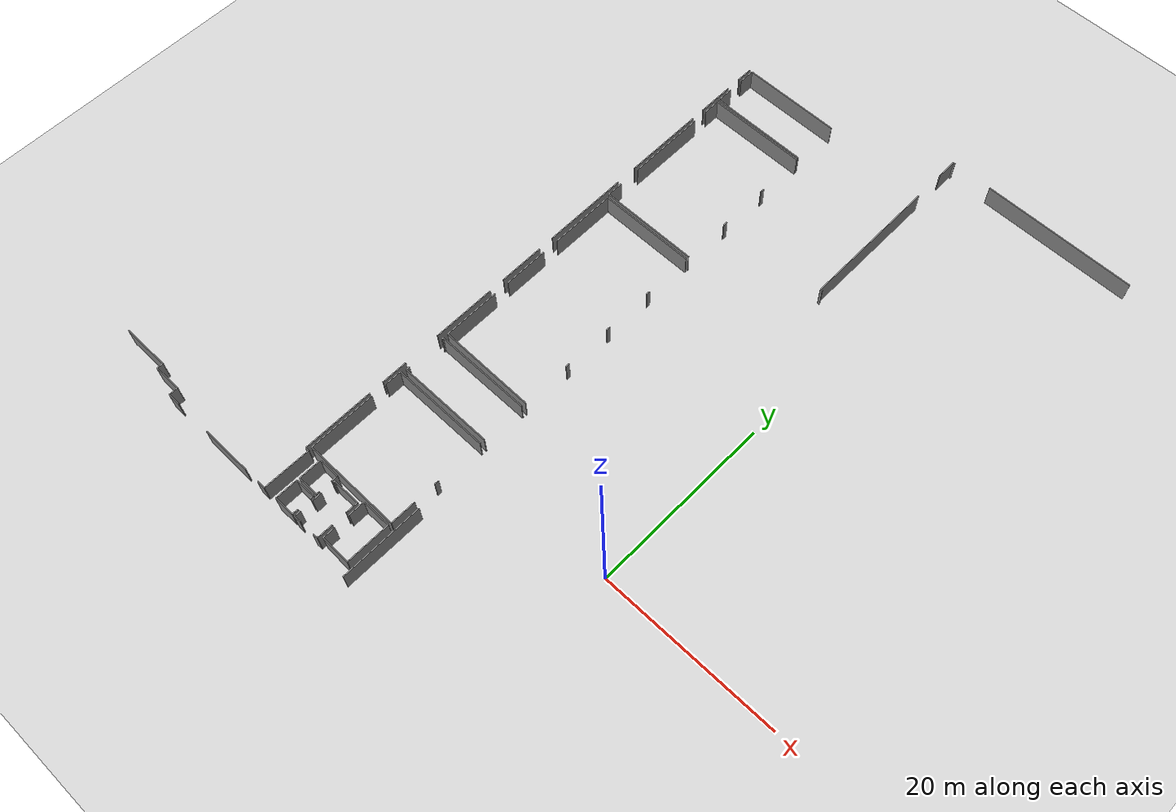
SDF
<sdf version="1.6">
 <world name="default">
  <model name="ground_plane">
   <static>1</static>
   <link name="link">
    <collision name="collision">
     <geometry><plane><normal>0 0 1</normal><size>100 100</size></plane></geometry>
     <surface><friction><ode><mu>100</mu><mu2>50</mu2></ode></friction></surface>
    </collision>
    <visual name="visual">
     <cast_shadows>0</cast_shadows>
     <geometry><plane><normal>0 0 1</normal><size>100 100</size></plane></geometry>
     <material>
      <script><uri>file://media/materials/scripts/gazebo.material</uri><name>Gazebo/Grey</name></script>
     </material>
    </visual>
   </link>
  </model>
  <model name="0510045904_A_40_1_102">
   <static>1</static>
   <link name="Wall_60">
    <collision name="Wall_60_Collision">
     <geometry><box><size>0.949382355555 0.1 2.5</size></box></geometry>
     <pose>0.474691177777 0 1.25 0 0 0</pose>
    </collision>
    <visual name="Wall_60_Visual">
     <pose>0.474691177777 0 1.25 0 0 0</pose>
     <geometry><box><size>0.949382355555 0.1 2.5</size></box></geometry>
     <material>
      <script><uri>file://media/materials/scripts/gazebo.material</uri><name>Gazebo/Grey</name></script>
      <ambient>1 1 1 1</ambient>
     </material>
    </visual>
    <pose>56.5137684563 -78.1370370841 0 0 0 3.14159265359</pose>
   </link>
   <link name="Wall_61">
    <collision name="Wall_61_Collision">
     <geometry><box><size>5.6762349715 0.1 2.5</size></box></geometry>
     <pose>2.83811748575 0 1.25 0 0 0</pose>
    </collision>
    <visual name="Wall_61_Visual">
     <pose>2.83811748575 0 1.25 0 0 0</pose>
     <geometry><box><size>5.6762349715 0.1 2.5</size></box></geometry>
     <material>
      <script><uri>file://media/materials/scripts/gazebo.material</uri><name>Gazebo/Grey</name></script>
      <ambient>1 1 1 1</ambient>
     </material>
    </visual>
    <pose>53.8753538919 -78.1370370841 0 0 0 3.14159265359</pose>
   </link>
   <link name="Wall_62">
    <collision name="Wall_62_Collision">
     <geometry><box><size>1.40160219381 0.1 2.5</size></box></geometry>
     <pose>0.700801096906 0 1.25 0 0 0</pose>
    </collision>
    <visual name="Wall_62_Visual">
     <pose>0.700801096906 0 1.25 0 0 0</pose>
     <geometry><box><size>1.40160219381 0.1 2.5</size></box></geometry>
     <material>
      <script><uri>file://media/materials/scripts/gazebo.material</uri><name>Gazebo/Grey</name></script>
      <ambient>1 1 1 1</ambient>
     </material>
    </visual>
    <pose>44.0293523938 -78.1370370841 0 0 0 3.14159265359</pose>
   </link>
   <link name="Wall_63">
    <collision name="Wall_63_Collision">
     <geometry><box><size>0.955222364696 0.1 2.5</size></box></geometry>
     <pose>0.477611182348 0 1.25 0 0 0</pose>
    </collision>
    <visual name="Wall_63_Visual">
     <pose>0.477611182348 0 1.25 0 0 0</pose>
     <geometry><box><size>0.955222364696 0.1 2.5</size></box></geometry>
     <material>
      <script><uri>file://media/materials/scripts/gazebo.material</uri><name>Gazebo/Grey</name></script>
      <ambient>1 1 1 1</ambient>
     </material>
    </visual>
    <pose>42.6277502 -78.1370370841 0 0 0 1.57079632679</pose>
   </link>
   <link name="Wall_64">
    <collision name="Wall_64_Collision">
     <geometry><box><size>3.09114222961 0.1 2.5</size></box></geometry>
     <pose>1.54557111481 0 1.25 0 0 0</pose>
    </collision>
    <visual name="Wall_64_Visual">
     <pose>1.54557111481 0 1.25 0 0 0</pose>
     <geometry><box><size>3.09114222961 0.1 2.5</size></box></geometry>
     <material>
      <script><uri>file://media/materials/scripts/gazebo.material</uri><name>Gazebo/Grey</name></script>
      <ambient>1 1 1 1</ambient>
     </material>
    </visual>
    <pose>42.6277502 -77.1818147194 0 0 0 3.14159265359</pose>
   </link>
   <link name="Wall_65">
    <collision name="Wall_65_Collision">
     <geometry><box><size>0.671854964643 0.1 2.5</size></box></geometry>
     <pose>0.335927482321 0 1.25 0 0 0</pose>
    </collision>
    <visual name="Wall_65_Visual">
     <pose>0.335927482321 0 1.25 0 0 0</pose>
     <geometry><box><size>0.671854964643 0.1 2.5</size></box></geometry>
     <material>
      <script><uri>file://media/materials/scripts/gazebo.material</uri><name>Gazebo/Grey</name></script>
      <ambient>1 1 1 1</ambient>
     </material>
    </visual>
    <pose>39.5366079703 -77.1818147194 0 0 0 1.57079632679</pose>
   </link>
   <link name="Wall_66">
    <collision name="Wall_66_Collision">
     <geometry><box><size>5.31821701982 0.1 2.5</size></box></geometry>
     <pose>2.65910850991 0 1.25 0 0 0</pose>
    </collision>
    <visual name="Wall_66_Visual">
     <pose>2.65910850991 0 1.25 0 0 0</pose>
     <geometry><box><size>5.31821701982 0.1 2.5</size></box></geometry>
     <material>
      <script><uri>file://media/materials/scripts/gazebo.material</uri><name>Gazebo/Grey</name></script>
      <ambient>1 1 1 1</ambient>
     </material>
    </visual>
    <pose>39.5366079703 -76.5099597547 0 0 0 3.14159265359</pose>
   </link>
   <link name="Wall_70">
    <collision name="Wall_70_Collision">
     <geometry><box><size>1.76622189496 0.1 2.5</size></box></geometry>
     <pose>0.883110947478 0 1.25 0 0 0</pose>
    </collision>
    <visual name="Wall_70_Visual">
     <pose>0.883110947478 0 1.25 0 0 0</pose>
     <geometry><box><size>1.76622189496 0.1 2.5</size></box></geometry>
     <material>
      <script><uri>file://media/materials/scripts/gazebo.material</uri><name>Gazebo/Grey</name></script>
      <ambient>1 1 1 1</ambient>
     </material>
    </visual>
    <pose>56.1443243998 -11.2316071451 0 0 0 -1.57079632679</pose>
   </link>
   <link name="Wall_71">
    <collision name="Wall_71_Collision">
     <geometry><box><size>3.98644102226 0.1 2.5</size></box></geometry>
     <pose>1.99322051113 0 1.25 0 0 0</pose>
    </collision>
    <visual name="Wall_71_Visual">
     <pose>1.99322051113 0 1.25 0 0 0</pose>
     <geometry><box><size>3.98644102226 0.1 2.5</size></box></geometry>
     <material>
      <script><uri>file://media/materials/scripts/gazebo.material</uri><name>Gazebo/Grey</name></script>
      <ambient>1 1 1 1</ambient>
     </material>
    </visual>
    <pose>56.1443243998 -14.699556921 0 0 0 -1.57079632679</pose>
   </link>
   <link name="Wall_72">
    <collision name="Wall_72_Collision">
     <geometry><box><size>8.83161730166 0.1 2.5</size></box></geometry>
     <pose>4.41580865083 0 1.25 0 0 0</pose>
    </collision>
    <visual name="Wall_72_Visual">
     <pose>4.41580865083 0 1.25 0 0 0</pose>
     <geometry><box><size>8.83161730166 0.1 2.5</size></box></geometry>
     <material>
      <script><uri>file://media/materials/scripts/gazebo.material</uri><name>Gazebo/Grey</name></script>
      <ambient>1 1 1 1</ambient>
     </material>
    </visual>
    <pose>56.1443243998 -20.2554369216 0 0 0 -1.57079632679</pose>
   </link>
   <link name="Wall_73">
    <collision name="Wall_73_Collision">
     <geometry><box><size>9.51794533244 0.1 2.5</size></box></geometry>
     <pose>4.75897266622 0 1.25 0 0 0</pose>
    </collision>
    <visual name="Wall_73_Visual">
     <pose>4.75897266622 0 1.25 0 0 0</pose>
     <geometry><box><size>9.51794533244 0.1 2.5</size></box></geometry>
     <material>
      <script><uri>file://media/materials/scripts/gazebo.material</uri><name>Gazebo/Grey</name></script>
      <ambient>1 1 1 1</ambient>
     </material>
    </visual>
    <pose>56.1443243998 -31.4870440667 0 0 0 -1.57079632679</pose>
   </link>
   <link name="Wall_74">
    <collision name="Wall_74_Collision">
     <geometry><box><size>4.99777825739 0.1 2.5</size></box></geometry>
     <pose>2.4988891287 0 1.25 0 0 0</pose>
    </collision>
    <visual name="Wall_74_Visual">
     <pose>2.4988891287 0 1.25 0 0 0</pose>
     <geometry><box><size>4.99777825739 0.1 2.5</size></box></geometry>
     <material>
      <script><uri>file://media/materials/scripts/gazebo.material</uri><name>Gazebo/Grey</name></script>
      <ambient>1 1 1 1</ambient>
     </material>
    </visual>
    <pose>56.1443243998 -42.7613086699 0 0 0 -1.57079632679</pose>
   </link>
   <link name="Wall_75">
    <collision name="Wall_75_Collision">
     <geometry><box><size>7.01029619003 0.1 2.5</size></box></geometry>
     <pose>3.50514809501 0 1.25 0 0 0</pose>
    </collision>
    <visual name="Wall_75_Visual">
     <pose>3.50514809501 0 1.25 0 0 0</pose>
     <geometry><box><size>7.01029619003 0.1 2.5</size></box></geometry>
     <material>
      <script><uri>file://media/materials/scripts/gazebo.material</uri><name>Gazebo/Grey</name></script>
      <ambient>1 1 1 1</ambient>
     </material>
    </visual>
    <pose>56.1443243998 -49.5110896695 0 0 0 -1.57079632679</pose>
   </link>
   <link name="Wall_76">
    <collision name="Wall_76_Collision">
     <geometry><box><size>2.89892975485 0.1 2.5</size></box></geometry>
     <pose>1.44946487742 0 1.25 0 0 0</pose>
    </collision>
    <visual name="Wall_76_Visual">
     <pose>1.44946487742 0 1.25 0 0 0</pose>
     <geometry><box><size>2.89892975485 0.1 2.5</size></box></geometry>
     <material>
      <script><uri>file://media/materials/scripts/gazebo.material</uri><name>Gazebo/Grey</name></script>
      <ambient>1 1 1 1</ambient>
     </material>
    </visual>
    <pose>56.1443243998 -60.5936496248 0 0 0 -1.57079632679</pose>
   </link>
   <link name="Wall_77">
    <collision name="Wall_77_Collision">
     <geometry><box><size>7.83602269986 0.1 2.5</size></box></geometry>
     <pose>3.91801134993 0 1.25 0 0 0</pose>
    </collision>
    <visual name="Wall_77_Visual">
     <pose>3.91801134993 0 1.25 0 0 0</pose>
     <geometry><box><size>7.83602269986 0.1 2.5</size></box></geometry>
     <material>
      <script><uri>file://media/materials/scripts/gazebo.material</uri><name>Gazebo/Grey</name></script>
      <ambient>1 1 1 1</ambient>
     </material>
    </visual>
    <pose>56.1443243998 -65.1102619117 0 0 0 -1.57079632679</pose>
   </link>
   <link name="Wall_78">
    <collision name="Wall_78_Collision">
     <geometry><box><size>0.418957177498 0.1 2.5</size></box></geometry>
     <pose>0.209478588749 0 1.25 0 0 0</pose>
    </collision>
    <visual name="Wall_78_Visual">
     <pose>0.209478588749 0 1.25 0 0 0</pose>
     <geometry><box><size>0.418957177498 0.1 2.5</size></box></geometry>
     <material>
      <script><uri>file://media/materials/scripts/gazebo.material</uri><name>Gazebo/Grey</name></script>
      <ambient>1 1 1 1</ambient>
     </material>
    </visual>
    <pose>56.1443243998 -72.9462846116 0 0 0 0.0</pose>
   </link>
   <link name="Wall_79">
    <collision name="Wall_79_Collision">
     <geometry><box><size>5.19098861295 0.1 2.5</size></box></geometry>
     <pose>2.59549430647 0 1.25 0 0 0</pose>
    </collision>
    <visual name="Wall_79_Visual">
     <pose>2.59549430647 0 1.25 0 0 0</pose>
     <geometry><box><size>5.19098861295 0.1 2.5</size></box></geometry>
     <material>
      <script><uri>file://media/materials/scripts/gazebo.material</uri><name>Gazebo/Grey</name></script>
      <ambient>1 1 1 1</ambient>
     </material>
    </visual>
    <pose>56.5632815773 -72.9462846116 0 0 0 -1.58033475492</pose>
   </link>
   <link name="Wall_80">
    <collision name="Wall_80_Collision">
     <geometry><box><size>10.9799789252 0.1 2.5</size></box></geometry>
     <pose>5.48998946259 0 1.25 0 0 0</pose>
    </collision>
    <visual name="Wall_80_Visual">
     <pose>5.48998946259 0 1.25 0 0 0</pose>
     <geometry><box><size>10.9799789252 0.1 2.5</size></box></geometry>
     <material>
      <script><uri>file://media/materials/scripts/gazebo.material</uri><name>Gazebo/Grey</name></script>
      <ambient>1 1 1 1</ambient>
     </material>
    </visual>
    <pose>67.4432186068 -11.2575063161 0 0 0 3.14159265359</pose>
   </link>
   <link name="Wall_81">
    <collision name="Wall_81_Collision">
     <geometry><box><size>1.78628105679 0.1 2.5</size></box></geometry>
     <pose>0.893140528394 0 1.25 0 0 0</pose>
    </collision>
    <visual name="Wall_81_Visual">
     <pose>0.893140528394 0 1.25 0 0 0</pose>
     <geometry><box><size>1.78628105679 0.1 2.5</size></box></geometry>
     <material>
      <script><uri>file://media/materials/scripts/gazebo.material</uri><name>Gazebo/Grey</name></script>
      <ambient>1 1 1 1</ambient>
     </material>
    </visual>
    <pose>56.4632396816 -11.2575063161 0 0 0 -1.57079632679</pose>
   </link>
   <link name="Wall_82">
    <collision name="Wall_82_Collision">
     <geometry><box><size>1.82386024604 0.1 2.5</size></box></geometry>
     <pose>0.911930123021 0 1.25 0 0 0</pose>
    </collision>
    <visual name="Wall_82_Visual">
     <pose>0.911930123021 0 1.25 0 0 0</pose>
     <geometry><box><size>1.82386024604 0.1 2.5</size></box></geometry>
     <material>
      <script><uri>file://media/materials/scripts/gazebo.material</uri><name>Gazebo/Grey</name></script>
      <ambient>1 1 1 1</ambient>
     </material>
    </visual>
    <pose>56.4632396816 -14.6683255678 0 0 0 -1.57079632679</pose>
   </link>
   <link name="Wall_83">
    <collision name="Wall_83_Collision">
     <geometry><box><size>10.9801728361 0.1 2.5</size></box></geometry>
     <pose>5.49008641806 0 1.25 0 0 0</pose>
    </collision>
    <visual name="Wall_83_Visual">
     <pose>5.49008641806 0 1.25 0 0 0</pose>
     <geometry><box><size>10.9801728361 0.1 2.5</size></box></geometry>
     <material>
      <script><uri>file://media/materials/scripts/gazebo.material</uri><name>Gazebo/Grey</name></script>
      <ambient>1 1 1 1</ambient>
     </material>
    </visual>
    <pose>56.4632396816 -16.4921858139 0 0 0 -0.00594308845872</pose>
   </link>
   <link name="Wall_84">
    <collision name="Wall_84_Collision">
     <geometry><box><size>0.479896403316 0.1 2.5</size></box></geometry>
     <pose>0.239948201658 0 1.25 0 0 0</pose>
    </collision>
    <visual name="Wall_84_Visual">
     <pose>0.239948201658 0 1.25 0 0 0</pose>
     <geometry><box><size>0.479896403316 0.1 2.5</size></box></geometry>
     <material>
      <script><uri>file://media/materials/scripts/gazebo.material</uri><name>Gazebo/Grey</name></script>
      <ambient>1 1 1 1</ambient>
     </material>
    </visual>
    <pose>67.4653090761 -28.0886665736 0 0 0 1.57079632679</pose>
   </link>
   <link name="Wall_85">
    <collision name="Wall_85_Collision">
     <geometry><box><size>0.460852895248 0.1 2.5</size></box></geometry>
     <pose>0.230426447624 0 1.25 0 0 0</pose>
    </collision>
    <visual name="Wall_85_Visual">
     <pose>0.230426447624 0 1.25 0 0 0</pose>
     <geometry><box><size>0.460852895248 0.1 2.5</size></box></geometry>
     <material>
      <script><uri>file://media/materials/scripts/gazebo.material</uri><name>Gazebo/Grey</name></script>
      <ambient>1 1 1 1</ambient>
     </material>
    </visual>
    <pose>67.4653090761 -22.4441707822 0 0 0 1.57079632679</pose>
   </link>
   <link name="Wall_86">
    <collision name="Wall_86_Collision">
     <geometry><box><size>10.9563649752 0.1 2.5</size></box></geometry>
     <pose>5.47818248759 0 1.25 0 0 0</pose>
    </collision>
    <visual name="Wall_86_Visual">
     <pose>5.47818248759 0 1.25 0 0 0</pose>
     <geometry><box><size>10.9563649752 0.1 2.5</size></box></geometry>
     <material>
      <script><uri>file://media/materials/scripts/gazebo.material</uri><name>Gazebo/Grey</name></script>
      <ambient>1 1 1 1</ambient>
     </material>
    </visual>
    <pose>67.4653090761 -16.8187184989 0 0 0 3.14159265359</pose>
   </link>
   <link name="Wall_87">
    <collision name="Wall_87_Collision">
     <geometry><box><size>1.84315766755 0.1 2.5</size></box></geometry>
     <pose>0.921578833776 0 1.25 0 0 0</pose>
    </collision>
    <visual name="Wall_87_Visual">
     <pose>0.921578833776 0 1.25 0 0 0</pose>
     <geometry><box><size>1.84315766755 0.1 2.5</size></box></geometry>
     <material>
      <script><uri>file://media/materials/scripts/gazebo.material</uri><name>Gazebo/Grey</name></script>
      <ambient>1 1 1 1</ambient>
     </material>
    </visual>
    <pose>56.508944101 -16.8187184989 0 0 0 -1.57079632679</pose>
   </link>
   <link name="Wall_88">
    <collision name="Wall_88_Collision">
     <geometry><box><size>8.75595109627 0.1 2.5</size></box></geometry>
     <pose>4.37797554814 0 1.25 0 0 0</pose>
    </collision>
    <visual name="Wall_88_Visual">
     <pose>4.37797554814 0 1.25 0 0 0</pose>
     <geometry><box><size>8.75595109627 0.1 2.5</size></box></geometry>
     <material>
      <script><uri>file://media/materials/scripts/gazebo.material</uri><name>Gazebo/Grey</name></script>
      <ambient>1 1 1 1</ambient>
     </material>
    </visual>
    <pose>56.508944101 -20.3321187807 0 0 0 -1.57079632679</pose>
   </link>
   <link name="Wall_89">
    <collision name="Wall_89_Collision">
     <geometry><box><size>1.77485495195 0.1 2.5</size></box></geometry>
     <pose>0.887427475973 0 1.25 0 0 0</pose>
    </collision>
    <visual name="Wall_89_Visual">
     <pose>0.887427475973 0 1.25 0 0 0</pose>
     <geometry><box><size>1.77485495195 0.1 2.5</size></box></geometry>
     <material>
      <script><uri>file://media/materials/scripts/gazebo.material</uri><name>Gazebo/Grey</name></script>
      <ambient>1 1 1 1</ambient>
     </material>
    </visual>
    <pose>56.508944101 -31.4832353651 0 0 0 -1.57079632679</pose>
   </link>
   <link name="Wall_90">
    <collision name="Wall_90_Collision">
     <geometry><box><size>10.9563732399 0.1 2.5</size></box></geometry>
     <pose>5.47818661993 0 1.25 0 0 0</pose>
    </collision>
    <visual name="Wall_90_Visual">
     <pose>5.47818661993 0 1.25 0 0 0</pose>
     <geometry><box><size>10.9563732399 0.1 2.5</size></box></geometry>
     <material>
      <script><uri>file://media/materials/scripts/gazebo.material</uri><name>Gazebo/Grey</name></script>
      <ambient>1 1 1 1</ambient>
     </material>
    </visual>
    <pose>56.508944101 -33.258090317 0 0 0 -0.00122827284698</pose>
   </link>
   <link name="Wall_91">
    <collision name="Wall_91_Collision">
     <geometry><box><size>0.441555473739 0.1 2.5</size></box></geometry>
     <pose>0.22077773687 0 1.25 0 0 0</pose>
    </collision>
    <visual name="Wall_91_Visual">
     <pose>0.22077773687 0 1.25 0 0 0</pose>
     <geometry><box><size>0.441555473739 0.1 2.5</size></box></geometry>
     <material>
      <script><uri>file://media/materials/scripts/gazebo.material</uri><name>Gazebo/Grey</name></script>
      <ambient>1 1 1 1</ambient>
     </material>
    </visual>
    <pose>67.4490586159 -50.4495537471 0 0 0 1.57079632679</pose>
   </link>
   <link name="Wall_92">
    <collision name="Wall_92_Collision">
     <geometry><box><size>0.463899856539 0.1 2.5</size></box></geometry>
     <pose>0.231949928269 0 1.25 0 0 0</pose>
    </collision>
    <visual name="Wall_92_Visual">
     <pose>0.231949928269 0 1.25 0 0 0</pose>
     <geometry><box><size>0.463899856539 0.1 2.5</size></box></geometry>
     <material>
      <script><uri>file://media/materials/scripts/gazebo.material</uri><name>Gazebo/Grey</name></script>
      <ambient>1 1 1 1</ambient>
     </material>
    </visual>
    <pose>67.4490586159 -44.9076389859 0 0 0 1.57079632679</pose>
   </link>
   <link name="Wall_93">
    <collision name="Wall_93_Collision">
     <geometry><box><size>0.44180938718 0.1 2.5</size></box></geometry>
     <pose>0.22090469359 0 1.25 0 0 0</pose>
    </collision>
    <visual name="Wall_93_Visual">
     <pose>0.22090469359 0 1.25 0 0 0</pose>
     <geometry><box><size>0.44180938718 0.1 2.5</size></box></geometry>
     <material>
      <script><uri>file://media/materials/scripts/gazebo.material</uri><name>Gazebo/Grey</name></script>
      <ambient>1 1 1 1</ambient>
     </material>
    </visual>
    <pose>67.4490586159 -39.3215432859 0 0 0 1.57079632679</pose>
   </link>
   <link name="Wall_94">
    <collision name="Wall_94_Collision">
     <geometry><box><size>10.7326672337 0.1 2.5</size></box></geometry>
     <pose>5.36633361687 0 1.25 0 0 0</pose>
    </collision>
    <visual name="Wall_94_Visual">
     <pose>5.36633361687 0 1.25 0 0 0</pose>
     <geometry><box><size>10.7326672337 0.1 2.5</size></box></geometry>
     <material>
      <script><uri>file://media/materials/scripts/gazebo.material</uri><name>Gazebo/Grey</name></script>
      <ambient>1 1 1 1</ambient>
     </material>
    </visual>
    <pose>67.4490586159 -33.6211865375 0 0 0 3.14159265359</pose>
   </link>
   <link name="Wall_95">
    <collision name="Wall_95_Collision">
     <geometry><box><size>7.33403582719 0.1 2.5</size></box></geometry>
     <pose>3.66701791359 0 1.25 0 0 0</pose>
    </collision>
    <visual name="Wall_95_Visual">
     <pose>3.66701791359 0 1.25 0 0 0</pose>
     <geometry><box><size>7.33403582719 0.1 2.5</size></box></geometry>
     <material>
      <script><uri>file://media/materials/scripts/gazebo.material</uri><name>Gazebo/Grey</name></script>
      <ambient>1 1 1 1</ambient>
     </material>
    </visual>
    <pose>56.7163913822 -33.6211865375 0 0 0 -1.57079632679</pose>
   </link>
   <link name="Wall_96">
    <collision name="Wall_96_Collision">
     <geometry><box><size>4.94724948265 0.1 2.5</size></box></geometry>
     <pose>2.47362474133 0 1.25 0 0 0</pose>
    </collision>
    <visual name="Wall_96_Visual">
     <pose>2.47362474133 0 1.25 0 0 0</pose>
     <geometry><box><size>4.94724948265 0.1 2.5</size></box></geometry>
     <material>
      <script><uri>file://media/materials/scripts/gazebo.material</uri><name>Gazebo/Grey</name></script>
      <ambient>1 1 1 1</ambient>
     </material>
    </visual>
    <pose>56.7163913822 -42.7610547564 0 0 0 -1.57079632679</pose>
   </link>
   <link name="Wall_97">
    <collision name="Wall_97_Collision">
     <geometry><box><size>6.24347759849 0.1 2.5</size></box></geometry>
     <pose>3.12173879924 0 1.25 0 0 0</pose>
    </collision>
    <visual name="Wall_97_Visual">
     <pose>3.12173879924 0 1.25 0 0 0</pose>
     <geometry><box><size>6.24347759849 0.1 2.5</size></box></geometry>
     <material>
      <script><uri>file://media/materials/scripts/gazebo.material</uri><name>Gazebo/Grey</name></script>
      <ambient>1 1 1 1</ambient>
     </material>
    </visual>
    <pose>56.7163913822 -49.4349156373 0 0 0 -1.57079632679</pose>
   </link>
   <link name="Wall_98">
    <collision name="Wall_98_Collision">
     <geometry><box><size>10.7332487037 0.1 2.5</size></box></geometry>
     <pose>5.36662435187 0 1.25 0 0 0</pose>
    </collision>
    <visual name="Wall_98_Visual">
     <pose>5.36662435187 0 1.25 0 0 0</pose>
     <geometry><box><size>10.7332487037 0.1 2.5</size></box></geometry>
     <material>
      <script><uri>file://media/materials/scripts/gazebo.material</uri><name>Gazebo/Grey</name></script>
      <ambient>1 1 1 1</ambient>
     </material>
    </visual>
    <pose>56.7163913822 -55.6783932357 0 0 0 -0.0104091440183</pose>
   </link>
   <link name="Wall_99">
    <collision name="Wall_99_Collision">
     <geometry><box><size>10.6864549875 0.1 2.5</size></box></geometry>
     <pose>5.34322749375 0 1.25 0 0 0</pose>
    </collision>
    <visual name="Wall_99_Visual">
     <pose>5.34322749375 0 1.25 0 0 0</pose>
     <geometry><box><size>10.6864549875 0.1 2.5</size></box></geometry>
     <material>
      <script><uri>file://media/materials/scripts/gazebo.material</uri><name>Gazebo/Grey</name></script>
      <ambient>1 1 1 1</ambient>
     </material>
    </visual>
    <pose>67.4211281374 -56.2783906966 0 0 0 3.14159265359</pose>
   </link>
   <link name="Wall_100">
    <collision name="Wall_100_Collision">
     <geometry><box><size>0.198814224231 0.1 2.5</size></box></geometry>
     <pose>0.0994071121155 0 1.25 0 0 0</pose>
    </collision>
    <visual name="Wall_100_Visual">
     <pose>0.0994071121155 0 1.25 0 0 0</pose>
     <geometry><box><size>0.198814224231 0.1 2.5</size></box></geometry>
     <material>
      <script><uri>file://media/materials/scripts/gazebo.material</uri><name>Gazebo/Grey</name></script>
      <ambient>1 1 1 1</ambient>
     </material>
    </visual>
    <pose>56.7346731499 -56.2783906966 0 0 0 -1.57079632679</pose>
   </link>
   <link name="Wall_101">
    <collision name="Wall_101_Collision">
     <geometry><box><size>0.403214544162 0.1 2.5</size></box></geometry>
     <pose>0.201607272081 0 1.25 0 0 0</pose>
    </collision>
    <visual name="Wall_101_Visual">
     <pose>0.201607272081 0 1.25 0 0 0</pose>
     <geometry><box><size>0.403214544162 0.1 2.5</size></box></geometry>
     <material>
      <script><uri>file://media/materials/scripts/gazebo.material</uri><name>Gazebo/Grey</name></script>
      <ambient>1 1 1 1</ambient>
     </material>
    </visual>
    <pose>56.7346731499 -60.6510340625 0 0 0 -1.57079632679</pose>
   </link>
   <link name="Wall_102">
    <collision name="Wall_102_Collision">
     <geometry><box><size>10.686466212 0.1 2.5</size></box></geometry>
     <pose>5.343233106 0 1.25 0 0 0</pose>
    </collision>
    <visual name="Wall_102_Visual">
     <pose>5.343233106 0 1.25 0 0 0</pose>
     <geometry><box><size>10.686466212 0.1 2.5</size></box></geometry>
     <material>
      <script><uri>file://media/materials/scripts/gazebo.material</uri><name>Gazebo/Grey</name></script>
      <ambient>1 1 1 1</ambient>
     </material>
    </visual>
    <pose>56.7346731499 -61.0542486066 0 0 0 -0.0014493776531</pose>
   </link>
   <link name="Wall_103">
    <collision name="Wall_103_Collision">
     <geometry><box><size>2.81843919408 0.1 2.5</size></box></geometry>
     <pose>1.40921959704 0 1.25 0 0 0</pose>
    </collision>
    <visual name="Wall_103_Visual">
     <pose>1.40921959704 0 1.25 0 0 0</pose>
     <geometry><box><size>2.81843919408 0.1 2.5</size></box></geometry>
     <material>
      <script><uri>file://media/materials/scripts/gazebo.material</uri><name>Gazebo/Grey</name></script>
      <ambient>1 1 1 1</ambient>
     </material>
    </visual>
    <pose>67.4310307616 -72.5410387599 0 0 0 1.57079632679</pose>
   </link>
   <link name="Wall_104">
    <collision name="Wall_104_Collision">
     <geometry><box><size>0.492338161921 0.1 2.5</size></box></geometry>
     <pose>0.24616908096 0 1.25 0 0 0</pose>
    </collision>
    <visual name="Wall_104_Visual">
     <pose>0.24616908096 0 1.25 0 0 0</pose>
     <geometry><box><size>0.492338161921 0.1 2.5</size></box></geometry>
     <material>
      <script><uri>file://media/materials/scripts/gazebo.material</uri><name>Gazebo/Grey</name></script>
      <ambient>1 1 1 1</ambient>
     </material>
    </visual>
    <pose>67.4310307616 -67.2944253304 0 0 0 1.57079632679</pose>
   </link>
   <link name="Wall_105">
    <collision name="Wall_105_Collision">
     <geometry><box><size>10.9266571026 0.1 2.5</size></box></geometry>
     <pose>5.4633285513 0 1.25 0 0 0</pose>
    </collision>
    <visual name="Wall_105_Visual">
     <pose>5.4633285513 0 1.25 0 0 0</pose>
     <geometry><box><size>10.9266571026 0.1 2.5</size></box></geometry>
     <material>
      <script><uri>file://media/materials/scripts/gazebo.material</uri><name>Gazebo/Grey</name></script>
      <ambient>1 1 1 1</ambient>
     </material>
    </visual>
    <pose>67.4310307616 -61.6009242449 0 0 0 3.14159265359</pose>
   </link>
   <link name="Wall_106">
    <collision name="Wall_106_Collision">
     <geometry><box><size>1.8682950982 0.1 2.5</size></box></geometry>
     <pose>0.934147549101 0 1.25 0 0 0</pose>
    </collision>
    <visual name="Wall_106_Visual">
     <pose>0.934147549101 0 1.25 0 0 0</pose>
     <geometry><box><size>1.8682950982 0.1 2.5</size></box></geometry>
     <material>
      <script><uri>file://media/materials/scripts/gazebo.material</uri><name>Gazebo/Grey</name></script>
      <ambient>1 1 1 1</ambient>
     </material>
    </visual>
    <pose>56.504373659 -61.6009242449 0 0 0 -1.57079632679</pose>
   </link>
   <link name="Wall_107">
    <collision name="Wall_107_Collision">
     <geometry><box><size>7.3533332487 0.1 2.5</size></box></geometry>
     <pose>3.67666662435 0 1.25 0 0 0</pose>
    </collision>
    <visual name="Wall_107_Visual">
     <pose>3.67666662435 0 1.25 0 0 0</pose>
     <geometry><box><size>7.3533332487 0.1 2.5</size></box></geometry>
     <material>
      <script><uri>file://media/materials/scripts/gazebo.material</uri><name>Gazebo/Grey</name></script>
      <ambient>1 1 1 1</ambient>
     </material>
    </visual>
    <pose>56.504373659 -65.1630759074 0 0 0 -1.57079632679</pose>
   </link>
   <link name="Wall_108">
    <collision name="Wall_108_Collision">
     <geometry><box><size>10.9266848612 0.1 2.5</size></box></geometry>
     <pose>5.46334243058 0 1.25 0 0 0</pose>
    </collision>
    <visual name="Wall_108_Visual">
     <pose>5.46334243058 0 1.25 0 0 0</pose>
     <geometry><box><size>10.9266848612 0.1 2.5</size></box></geometry>
     <material>
      <script><uri>file://media/materials/scripts/gazebo.material</uri><name>Gazebo/Grey</name></script>
      <ambient>1 1 1 1</ambient>
     </material>
    </visual>
    <pose>56.504373659 -72.5164091561 0 0 0 -0.00225408025744</pose>
   </link>
   <link name="Wall_141">
    <collision name="Wall_141_Collision">
     <geometry><box><size>1.7441314256 0.1 2.5</size></box></geometry>
     <pose>0.872065712799 0 1.25 0 0 0</pose>
    </collision>
    <visual name="Wall_141_Visual">
     <pose>0.872065712799 0 1.25 0 0 0</pose>
     <geometry><box><size>1.7441314256 0.1 2.5</size></box></geometry>
     <material>
      <script><uri>file://media/materials/scripts/gazebo.material</uri><name>Gazebo/Grey</name></script>
      <ambient>1 1 1 1</ambient>
     </material>
    </visual>
    <pose>63.7337971486 -78.0044942679 0 0 0 1.57079632679</pose>
   </link>
   <link name="Wall_142">
    <collision name="Wall_142_Collision">
     <geometry><box><size>1.36884735994 0.1 2.5</size></box></geometry>
     <pose>0.684423679968 0 1.25 0 0 0</pose>
    </collision>
    <visual name="Wall_142_Visual">
     <pose>0.684423679968 0 1.25 0 0 0</pose>
     <geometry><box><size>1.36884735994 0.1 2.5</size></box></geometry>
     <material>
      <script><uri>file://media/materials/scripts/gazebo.material</uri><name>Gazebo/Grey</name></script>
      <ambient>1 1 1 1</ambient>
     </material>
    </visual>
    <pose>63.7337971486 -74.6706107888 0 0 0 1.57079632679</pose>
   </link>
   <link name="Wall_143">
    <collision name="Wall_143_Collision">
     <geometry><box><size>3.09114222961 0.1 2.5</size></box></geometry>
     <pose>1.54557111481 0 1.25 0 0 0</pose>
    </collision>
    <visual name="Wall_143_Visual">
     <pose>1.54557111481 0 1.25 0 0 0</pose>
     <geometry><box><size>3.09114222961 0.1 2.5</size></box></geometry>
     <material>
      <script><uri>file://media/materials/scripts/gazebo.material</uri><name>Gazebo/Grey</name></script>
      <ambient>1 1 1 1</ambient>
     </material>
    </visual>
    <pose>63.7337971486 -73.3017634288 0 0 0 3.14159265359</pose>
   </link>
   <link name="Wall_144">
    <collision name="Wall_144_Collision">
     <geometry><box><size>0.19856031079 0.1 2.5</size></box></geometry>
     <pose>0.099280155395 0 1.25 0 0 0</pose>
    </collision>
    <visual name="Wall_144_Visual">
     <pose>0.099280155395 0 1.25 0 0 0</pose>
     <geometry><box><size>0.19856031079 0.1 2.5</size></box></geometry>
     <material>
      <script><uri>file://media/materials/scripts/gazebo.material</uri><name>Gazebo/Grey</name></script>
      <ambient>1 1 1 1</ambient>
     </material>
    </visual>
    <pose>60.6426549189 -73.3017634288 0 0 0 -1.57079632679</pose>
   </link>
   <link name="Wall_145">
    <collision name="Wall_145_Collision">
     <geometry><box><size>1.05983470235 0.1 2.5</size></box></geometry>
     <pose>0.529917351175 0 1.25 0 0 0</pose>
    </collision>
    <visual name="Wall_145_Visual">
     <pose>0.529917351175 0 1.25 0 0 0</pose>
     <geometry><box><size>1.05983470235 0.1 2.5</size></box></geometry>
     <material>
      <script><uri>file://media/materials/scripts/gazebo.material</uri><name>Gazebo/Grey</name></script>
      <ambient>1 1 1 1</ambient>
     </material>
    </visual>
    <pose>60.6426549189 -74.9090355098 0 0 0 -1.57079632679</pose>
   </link>
   <link name="Wall_146">
    <collision name="Wall_146_Collision">
     <geometry><box><size>0.694199347442 0.1 2.5</size></box></geometry>
     <pose>0.347099673721 0 1.25 0 0 0</pose>
    </collision>
    <visual name="Wall_146_Visual">
     <pose>0.347099673721 0 1.25 0 0 0</pose>
     <geometry><box><size>0.694199347442 0.1 2.5</size></box></geometry>
     <material>
      <script><uri>file://media/materials/scripts/gazebo.material</uri><name>Gazebo/Grey</name></script>
      <ambient>1 1 1 1</ambient>
     </material>
    </visual>
    <pose>60.6426549189 -77.3557454264 0 0 0 -1.57079632679</pose>
   </link>
   <link name="Wall_147">
    <collision name="Wall_147_Collision">
     <geometry><box><size>0.785100359288 0.1 2.5</size></box></geometry>
     <pose>0.392550179644 0 1.25 0 0 0</pose>
    </collision>
    <visual name="Wall_147_Visual">
     <pose>0.392550179644 0 1.25 0 0 0</pose>
     <geometry><box><size>0.785100359288 0.1 2.5</size></box></geometry>
     <material>
      <script><uri>file://media/materials/scripts/gazebo.material</uri><name>Gazebo/Grey</name></script>
      <ambient>1 1 1 1</ambient>
     </material>
    </visual>
    <pose>60.6426549189 -78.0499447738 0 0 0 0.0</pose>
   </link>
   <link name="Wall_148">
    <collision name="Wall_148_Collision">
     <geometry><box><size>0.544260188191 0.1 2.5</size></box></geometry>
     <pose>0.272130094095 0 1.25 0 0 0</pose>
    </collision>
    <visual name="Wall_148_Visual">
     <pose>0.272130094095 0 1.25 0 0 0</pose>
     <geometry><box><size>0.544260188191 0.1 2.5</size></box></geometry>
     <material>
      <script><uri>file://media/materials/scripts/gazebo.material</uri><name>Gazebo/Grey</name></script>
      <ambient>1 1 1 1</ambient>
     </material>
    </visual>
    <pose>63.1914380388 -78.0499447738 0 0 0 0.0836061499131</pose>
   </link>
   <link name="Wall_149">
    <collision name="Wall_149_Collision">
     <geometry><box><size>2.29740881334 0.1 2.5</size></box></geometry>
     <pose>1.14870440667 0 1.25 0 0 0</pose>
    </collision>
    <visual name="Wall_149_Visual">
     <pose>1.14870440667 0 1.25 0 0 0</pose>
     <geometry><box><size>2.29740881334 0.1 2.5</size></box></geometry>
     <material>
      <script><uri>file://media/materials/scripts/gazebo.material</uri><name>Gazebo/Grey</name></script>
      <ambient>1 1 1 1</ambient>
     </material>
    </visual>
    <pose>60.3925501796 -75.3104726599 0 0 0 3.14159265359</pose>
   </link>
   <link name="Wall_150">
    <collision name="Wall_150_Collision">
     <geometry><box><size>2.4995239123 0.1 2.5</size></box></geometry>
     <pose>1.24976195615 0 1.25 0 0 0</pose>
    </collision>
    <visual name="Wall_150_Visual">
     <pose>1.24976195615 0 1.25 0 0 0</pose>
     <geometry><box><size>2.4995239123 0.1 2.5</size></box></geometry>
     <material>
      <script><uri>file://media/materials/scripts/gazebo.material</uri><name>Gazebo/Grey</name></script>
      <ambient>1 1 1 1</ambient>
     </material>
    </visual>
    <pose>58.0951413663 -75.3104726599 0 0 0 1.57079632679</pose>
   </link>
   <link name="Wall_151">
    <collision name="Wall_151_Collision">
     <geometry><box><size>2.32280015743 0.1 2.5</size></box></geometry>
     <pose>1.16140007871 0 1.25 0 0 0</pose>
    </collision>
    <visual name="Wall_151_Visual">
     <pose>1.16140007871 0 1.25 0 0 0</pose>
     <geometry><box><size>2.32280015743 0.1 2.5</size></box></geometry>
     <material>
      <script><uri>file://media/materials/scripts/gazebo.material</uri><name>Gazebo/Grey</name></script>
      <ambient>1 1 1 1</ambient>
     </material>
    </visual>
    <pose>58.0951413663 -72.8109487476 0 0 0 0.0</pose>
   </link>
   <link name="Wall_152">
    <collision name="Wall_152_Collision">
     <geometry><box><size>0.706895019488 0.1 2.5</size></box></geometry>
     <pose>0.353447509744 0 1.25 0 0 0</pose>
    </collision>
    <visual name="Wall_152_Visual">
     <pose>0.353447509744 0 1.25 0 0 0</pose>
     <geometry><box><size>0.706895019488 0.1 2.5</size></box></geometry>
     <material>
      <script><uri>file://media/materials/scripts/gazebo.material</uri><name>Gazebo/Grey</name></script>
      <ambient>1 1 1 1</ambient>
     </material>
    </visual>
    <pose>60.4179415237 -72.8109487476 0 0 0 -1.57079632679</pose>
   </link>
   <link name="Wall_153">
    <collision name="Wall_153_Collision">
     <geometry><box><size>0.387796238529 0.1 2.5</size></box></geometry>
     <pose>0.193898119264 0 1.25 0 0 0</pose>
    </collision>
    <visual name="Wall_153_Visual">
     <pose>0.193898119264 0 1.25 0 0 0</pose>
     <geometry><box><size>0.387796238529 0.1 2.5</size></box></geometry>
     <material>
      <script><uri>file://media/materials/scripts/gazebo.material</uri><name>Gazebo/Grey</name></script>
      <ambient>1 1 1 1</ambient>
     </material>
    </visual>
    <pose>60.4179415237 -74.9235085759 0 0 0 -1.63631919478</pose>
   </link>
   <link name="Wall_154">
    <collision name="Wall_154_Collision">
     <geometry><box><size>0.653319283456 0.1 2.5</size></box></geometry>
     <pose>0.326659641728 0 1.25 0 0 0</pose>
    </collision>
    <visual name="Wall_154_Visual">
     <pose>0.326659641728 0 1.25 0 0 0</pose>
     <geometry><box><size>0.653319283456 0.1 2.5</size></box></geometry>
     <material>
      <script><uri>file://media/materials/scripts/gazebo.material</uri><name>Gazebo/Grey</name></script>
      <ambient>1 1 1 1</ambient>
     </material>
    </visual>
    <pose>60.3458301065 -78.0593395711 0 0 0 1.57079632679</pose>
   </link>
   <link name="Wall_155">
    <collision name="Wall_155_Collision">
     <geometry><box><size>0.364873614585 0.1 2.5</size></box></geometry>
     <pose>0.182436807292 0 1.25 0 0 0</pose>
    </collision>
    <visual name="Wall_155_Visual">
     <pose>0.182436807292 0 1.25 0 0 0</pose>
     <geometry><box><size>0.364873614585 0.1 2.5</size></box></geometry>
     <material>
      <script><uri>file://media/materials/scripts/gazebo.material</uri><name>Gazebo/Grey</name></script>
      <ambient>1 1 1 1</ambient>
     </material>
    </visual>
    <pose>60.3458301065 -75.9531275788 0 0 0 1.57079632679</pose>
   </link>
   <link name="Wall_156">
    <collision name="Wall_156_Collision">
     <geometry><box><size>2.28166618 0.1 2.5</size></box></geometry>
     <pose>1.14083309 0 1.25 0 0 0</pose>
    </collision>
    <visual name="Wall_156_Visual">
     <pose>1.14083309 0 1.25 0 0 0</pose>
     <geometry><box><size>2.28166618 0.1 2.5</size></box></geometry>
     <material>
      <script><uri>file://media/materials/scripts/gazebo.material</uri><name>Gazebo/Grey</name></script>
      <ambient>1 1 1 1</ambient>
     </material>
    </visual>
    <pose>60.3458301065 -75.5882539642 0 0 0 3.14159265359</pose>
   </link>
   <link name="Wall_157">
    <collision name="Wall_157_Collision">
     <geometry><box><size>2.47692561606 0.1 2.5</size></box></geometry>
     <pose>1.23846280803 0 1.25 0 0 0</pose>
    </collision>
    <visual name="Wall_157_Visual">
     <pose>1.23846280803 0 1.25 0 0 0</pose>
     <geometry><box><size>2.47692561606 0.1 2.5</size></box></geometry>
     <material>
      <script><uri>file://media/materials/scripts/gazebo.material</uri><name>Gazebo/Grey</name></script>
      <ambient>1 1 1 1</ambient>
     </material>
    </visual>
    <pose>58.0641639265 -75.5882539642 0 0 0 -1.57079632679</pose>
   </link>
   <link name="Wall_158">
    <collision name="Wall_158_Collision">
     <geometry><box><size>2.28167365385 0.1 2.5</size></box></geometry>
     <pose>1.14083682692 0 1.25 0 0 0</pose>
    </collision>
    <visual name="Wall_158_Visual">
     <pose>1.14083682692 0 1.25 0 0 0</pose>
     <geometry><box><size>2.28167365385 0.1 2.5</size></box></geometry>
     <material>
      <script><uri>file://media/materials/scripts/gazebo.material</uri><name>Gazebo/Grey</name></script>
      <ambient>1 1 1 1</ambient>
     </material>
    </visual>
    <pose>58.0641639265 -78.0651795803 0 0 0 0.00255953146829</pose>
   </link>
   <link name="Wall_159">
    <collision name="Wall_159_Collision">
     <geometry><box><size>4.84746150037 0.1 2.5</size></box></geometry>
     <pose>2.42373075019 0 1.25 0 0 0</pose>
    </collision>
    <visual name="Wall_159_Visual">
     <pose>2.42373075019 0 1.25 0 0 0</pose>
     <geometry><box><size>4.84746150037 0.1 2.5</size></box></geometry>
     <material>
      <script><uri>file://media/materials/scripts/gazebo.material</uri><name>Gazebo/Grey</name></script>
      <ambient>1 1 1 1</ambient>
     </material>
    </visual>
    <pose>67.373646324 -77.683801592 0 0 0 1.57079632679</pose>
   </link>
   <link name="Wall_160">
    <collision name="Wall_160_Collision">
     <geometry><box><size>3.28233905062 0.1 2.5</size></box></geometry>
     <pose>1.64116952531 0 1.25 0 0 0</pose>
    </collision>
    <visual name="Wall_160_Visual">
     <pose>1.64116952531 0 1.25 0 0 0</pose>
     <geometry><box><size>3.28233905062 0.1 2.5</size></box></geometry>
     <material>
      <script><uri>file://media/materials/scripts/gazebo.material</uri><name>Gazebo/Grey</name></script>
      <ambient>1 1 1 1</ambient>
     </material>
    </visual>
    <pose>67.373646324 -72.8363400917 0 0 0 3.14159265359</pose>
   </link>
   <link name="Wall_161">
    <collision name="Wall_161_Collision">
     <geometry><box><size>1.80507065141 0.1 2.5</size></box></geometry>
     <pose>0.902535325707 0 1.25 0 0 0</pose>
    </collision>
    <visual name="Wall_161_Visual">
     <pose>0.902535325707 0 1.25 0 0 0</pose>
     <geometry><box><size>1.80507065141 0.1 2.5</size></box></geometry>
     <material>
      <script><uri>file://media/materials/scripts/gazebo.material</uri><name>Gazebo/Grey</name></script>
      <ambient>1 1 1 1</ambient>
     </material>
    </visual>
    <pose>64.0913072734 -72.8363400917 0 0 0 -1.57079632679</pose>
   </link>
   <link name="Wall_162">
    <collision name="Wall_162_Collision">
     <geometry><box><size>1.32009597928 0.1 2.5</size></box></geometry>
     <pose>0.66004798964 0 1.25 0 0 0</pose>
    </collision>
    <visual name="Wall_162_Visual">
     <pose>0.66004798964 0 1.25 0 0 0</pose>
     <geometry><box><size>1.32009597928 0.1 2.5</size></box></geometry>
     <material>
      <script><uri>file://media/materials/scripts/gazebo.material</uri><name>Gazebo/Grey</name></script>
      <ambient>1 1 1 1</ambient>
     </material>
    </visual>
    <pose>64.0913072734 -76.3027663869 0 0 0 -1.57079632679</pose>
   </link>
   <link name="Wall_163">
    <collision name="Wall_163_Collision">
     <geometry><box><size>3.28290469439 0.1 2.5</size></box></geometry>
     <pose>1.6414523472 0 1.25 0 0 0</pose>
    </collision>
    <visual name="Wall_163_Visual">
     <pose>1.6414523472 0 1.25 0 0 0</pose>
     <geometry><box><size>3.28290469439 0.1 2.5</size></box></geometry>
     <material>
      <script><uri>file://media/materials/scripts/gazebo.material</uri><name>Gazebo/Grey</name></script>
      <ambient>1 1 1 1</ambient>
     </material>
    </visual>
    <pose>64.0913072734 -77.6228623662 0 0 0 -0.018563659829</pose>
   </link>
   <link name="Wall_166">
    <collision name="Wall_166_Collision">
     <geometry><box><size>9.01265758503 0.1 2.5</size></box></geometry>
     <pose>4.50632879251 0 1.25 0 0 0</pose>
    </collision>
    <visual name="Wall_166_Visual">
     <pose>4.50632879251 0 1.25 0 0 0</pose>
     <geometry><box><size>9.01265758503 0.1 2.5</size></box></geometry>
     <material>
      <script><uri>file://media/materials/scripts/gazebo.material</uri><name>Gazebo/Grey</name></script>
      <ambient>1 1 1 1</ambient>
     </material>
    </visual>
    <pose>68.1541762413 -69.8470171519 0 0 0 -1.57079632679</pose>
   </link>
   <link name="Wall_215">
    <collision name="Wall_215_Collision">
     <geometry><box><size>0.226998616172 0.1 2.5</size></box></geometry>
     <pose>0.113499308086 0 1.25 0 0 0</pose>
    </collision>
    <visual name="Wall_215_Visual">
     <pose>0.113499308086 0 1.25 0 0 0</pose>
     <geometry><box><size>0.226998616172 0.1 2.5</size></box></geometry>
     <material>
      <script><uri>file://media/materials/scripts/gazebo.material</uri><name>Gazebo/Grey</name></script>
      <ambient>1 1 1 1</ambient>
     </material>
    </visual>
    <pose>79.602625465 -27.2438965557 0 0 0 3.14159265359</pose>
   </link>
   <link name="Wall_216">
    <collision name="Wall_216_Collision">
     <geometry><box><size>15.4364137266 0.1 2.5</size></box></geometry>
     <pose>7.71820686328 0 1.25 0 0 0</pose>
    </collision>
    <visual name="Wall_216_Visual">
     <pose>7.71820686328 0 1.25 0 0 0</pose>
     <geometry><box><size>15.4364137266 0.1 2.5</size></box></geometry>
     <material>
      <script><uri>file://media/materials/scripts/gazebo.material</uri><name>Gazebo/Grey</name></script>
      <ambient>1 1 1 1</ambient>
     </material>
    </visual>
    <pose>79.3756268488 -27.2438965557 0 0 0 1.57079632679</pose>
   </link>
   <link name="Wall_217">
    <collision name="Wall_217_Collision">
     <geometry><box><size>2.26440006602 0.1 2.5</size></box></geometry>
     <pose>1.13220003301 0 1.25 0 0 0</pose>
    </collision>
    <visual name="Wall_217_Visual">
     <pose>1.13220003301 0 1.25 0 0 0</pose>
     <geometry><box><size>2.26440006602 0.1 2.5</size></box></geometry>
     <material>
      <script><uri>file://media/materials/scripts/gazebo.material</uri><name>Gazebo/Grey</name></script>
      <ambient>1 1 1 1</ambient>
     </material>
    </visual>
    <pose>79.3756268488 -8.33242347684 0 0 0 1.57079632679</pose>
   </link>
   <link name="Wall_218">
    <collision name="Wall_218_Collision">
     <geometry><box><size>0.230553404344 0.1 2.5</size></box></geometry>
     <pose>0.115276702172 0 1.25 0 0 0</pose>
    </collision>
    <visual name="Wall_218_Visual">
     <pose>0.115276702172 0 1.25 0 0 0</pose>
     <geometry><box><size>0.230553404344 0.1 2.5</size></box></geometry>
     <material>
      <script><uri>file://media/materials/scripts/gazebo.material</uri><name>Gazebo/Grey</name></script>
      <ambient>1 1 1 1</ambient>
     </material>
    </visual>
    <pose>79.3756268488 -6.06802341082 0 0 0 0.0</pose>
   </link>
   <link name="Wall_219">
    <collision name="Wall_219_Collision">
     <geometry><box><size>16.9918874656 0.1 2.5</size></box></geometry>
     <pose>8.49594373278 0 1.25 0 0 0</pose>
    </collision>
    <visual name="Wall_219_Visual">
     <pose>8.49594373278 0 1.25 0 0 0</pose>
     <geometry><box><size>16.9918874656 0.1 2.5</size></box></geometry>
     <material>
      <script><uri>file://media/materials/scripts/gazebo.material</uri><name>Gazebo/Grey</name></script>
      <ambient>1 1 1 1</ambient>
     </material>
    </visual>
    <pose>83.9993906077 -6.06802341082 0 0 0 0.0</pose>
   </link>
   <pose>-84.3 62.4479902751 0 0 0 0</pose>
  </model>
 </world>
</sdf>
